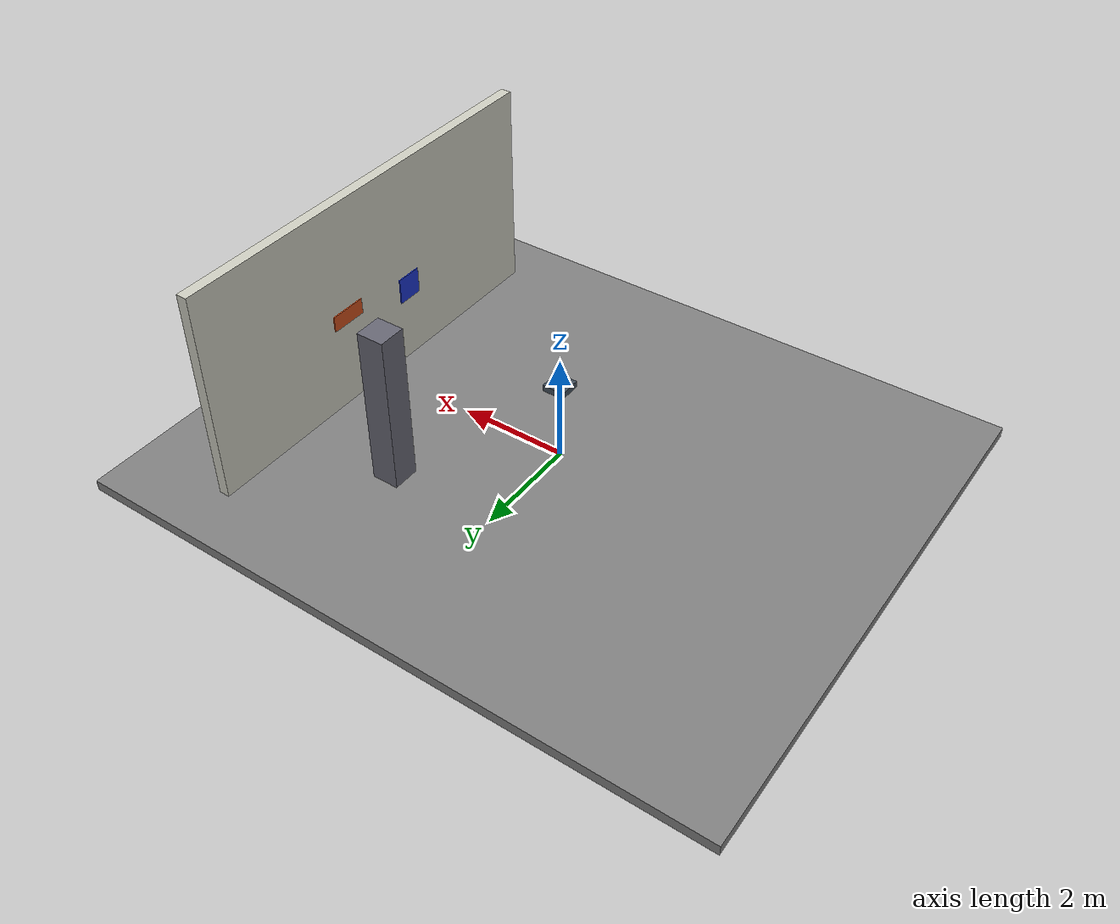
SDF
<?xml version="1.0"?>
<sdf version="1.12">
  <world name="inspection_bay">
    <gravity>0 0 -9.81</gravity>
    <physics name="foundation" type="ignored">
      <max_step_size>0.001</max_step_size><real_time_factor>1</real_time_factor>
    </physics>
    <plugin filename="gz-sim-physics-system" name="gz::sim::systems::Physics"/>
    <plugin filename="gz-sim-user-commands-system" name="gz::sim::systems::UserCommands"/>
    <plugin filename="gz-sim-scene-broadcaster-system" name="gz::sim::systems::SceneBroadcaster"/>
    <plugin filename="gz-sim-sensors-system" name="gz::sim::systems::Sensors">
      <render_engine>ogre2</render_engine>
    </plugin>
    <plugin filename="gz-sim-imu-system" name="gz::sim::systems::Imu"/>
    <scene><ambient>0.6 0.6 0.6 1</ambient><background>0.8 0.85 0.9 1</background></scene>
    <light name="bay_light" type="directional">
      <pose>0 0 8 0 0 0</pose><diffuse>0.9 0.9 0.9 1</diffuse>
      <specular>0.1 0.1 0.1 1</specular><direction>0.3 0 -1</direction>
      <cast_shadows>true</cast_shadows>
    </light>
    <model name="floor">
      <static>true</static><pose>0 0 -0.1 0 0 0</pose>
      <link name="geometry">
        <collision name="collision"><geometry><box><size>12 10 0.2</size></box></geometry></collision>
        <visual name="visual"><geometry><box><size>12 10 0.2</size></box></geometry>
          <material><ambient>0.5 0.5 0.5 1</ambient><diffuse>0.5 0.5 0.5 1</diffuse></material>
        </visual>
      </link>
    </model>
    <model name="wall">
      <static>true</static><pose>4 0 2 0 0 0</pose>
      <link name="geometry">
        <collision name="collision"><geometry><box><size>0.2 8 4</size></box></geometry></collision>
        <visual name="visual"><geometry><box><size>0.2 8 4</size></box></geometry>
          <material><ambient>0.8 0.8 0.75 1</ambient><diffuse>0.8 0.8 0.75 1</diffuse></material>
        </visual>
      </link>
    </model>
    <model name="column">
      <static>true</static><pose>2 2 1.5 0 0 0</pose>
      <link name="geometry">
        <collision name="collision"><geometry><box><size>0.5 0.5 3</size></box></geometry></collision>
        <visual name="visual"><geometry><box><size>0.5 0.5 3</size></box></geometry>
          <material><ambient>0.4 0.4 0.45 1</ambient><diffuse>0.4 0.4 0.45 1</diffuse></material>
        </visual>
      </link>
    </model>
    <!-- Neutral geometric panels: no defect classes, labels, or detections. -->
    <model name="panel_a">
      <static>true</static><pose>3.88 -0.8 1.5 0 0 0</pose>
      <link name="geometry">
        <collision name="collision"><geometry><box><size>0.02 0.5 0.5</size></box></geometry></collision>
        <visual name="visual"><geometry><box><size>0.02 0.5 0.5</size></box></geometry>
          <material><ambient>0.1 0.2 0.8 1</ambient><diffuse>0.1 0.2 0.8 1</diffuse></material>
        </visual>
      </link>
    </model>
    <model name="panel_b">
      <static>true</static><pose>3.88 0.8 1.8 0 0 0</pose>
      <link name="geometry">
        <collision name="collision"><geometry><box><size>0.02 0.7 0.3</size></box></geometry></collision>
        <visual name="visual"><geometry><box><size>0.02 0.7 0.3</size></box></geometry>
          <material><ambient>0.8 0.3 0.1 1</ambient><diffuse>0.8 0.3 0.1 1</diffuse></material>
        </visual>
      </link>
    </model>
    <!-- Known Gazebo world pose only; never a world->map or odom TF. -->
    <include>
      <uri>model://aegis_drone</uri><name>aegis_drone</name>
      <pose>0 0 1.5 0 0 0</pose>
    </include>
  </world>
</sdf>

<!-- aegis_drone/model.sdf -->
<sdf version="1.12">
  <model name="aegis_drone">
    <!-- P13 deterministic VIO-motion body. -->
    <static>false</static>
    <link name="base_link">
      <inertial>
        <mass>1.5</mass>
        <inertia>
          <ixx>0.0218</ixx>
          <iyy>0.0218</iyy>
          <izz>0.0400</izz>
          <ixy>0</ixy>
          <ixz>0</ixz>
          <iyz>0</iyz>
        </inertia>
      </inertial>
      <collision name="body"><geometry><box><size>0.4 0.4 0.12</size></box></geometry></collision>
      <visual name="body">
        <geometry><box><size>0.4 0.4 0.12</size></box></geometry>
        <material><ambient>0.25 0.3 0.35 1</ambient><diffuse>0.25 0.3 0.35 1</diffuse></material>
      </visual>
      <!-- Rendering looks along camera_link +X. Header labels the optical convention. -->
      <!-- One RGB-D renderer shares pose, projection, resolution and clipping. -->
      <sensor name="camera" type="rgbd_camera">
        <pose relative_to="camera_link">0 0 0 0 0 0</pose>
        <frame_id>camera_optical_frame</frame_id>
        <!-- RGB-D appends /image and /depth_image to this transport prefix. -->
        <topic>/aegis/sim/sensors/camera</topic>
        <always_on>true</always_on><update_rate>30</update_rate>
        <camera>
          <camera_info_topic>/aegis/sim/sensors/camera/camera_info</camera_info_topic>
          <horizontal_fov>1.0471975511965976</horizontal_fov>
          <image><width>640</width><height>480</height><format>R8G8B8</format></image>
          <clip><near>0.1</near><far>20</far></clip>
        </camera>
      </sensor>
      <sensor name="imu" type="imu">
        <pose relative_to="imu_link">0 0 0 0 0 0</pose>
        <frame_id>imu_link</frame_id>
        <topic>/aegis/sim/sensors/imu/data</topic>
        <always_on>true</always_on><update_rate>200</update_rate>
        <imu/>
      </sensor>
      <sensor name="lidar" type="gpu_lidar">
        <pose relative_to="lidar_link">0 0 0 0 0 0</pose>
        <frame_id>lidar_link</frame_id>
        <topic>/aegis/sim/sensors/lidar</topic>
        <always_on>true</always_on><update_rate>10</update_rate>
        <lidar>
          <scan>
            <horizontal><samples>360</samples><resolution>1</resolution>
              <min_angle>-3.141592653589793</min_angle><max_angle>3.141592653589793</max_angle>
            </horizontal>
            <vertical><samples>16</samples><resolution>1</resolution>
              <min_angle>-0.2617993877991494</min_angle><max_angle>0.2617993877991494</max_angle>
            </vertical>
          </scan>
          <range><min>0.2</min><max>20</max><resolution>0.01</resolution></range>
        </lidar>
      </sensor>
    </link>
    <!-- Must match description/urdf/drone.urdf.xacro; parity is tested. -->
    <frame name="camera_link" attached_to="base_link"><pose>0.25 0 0 0 0 0</pose></frame>
    <frame name="camera_optical_frame" attached_to="camera_link">
      <pose>0 0 0 -1.5707963267948966 0 -1.5707963267948966</pose>
    </frame>
    <frame name="imu_link" attached_to="base_link"><pose>0 0 0 0 0 0</pose></frame>
    <frame name="lidar_link" attached_to="base_link"><pose>0 0 0.15 0 0 0</pose></frame>

    <plugin
      filename="libaegis_deterministic_motion.so"
      name="aegisinspect::sim::DeterministicMotionSystem"/>
  </model>
</sdf>
